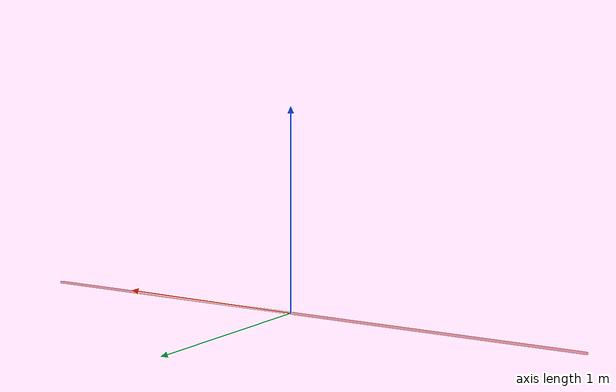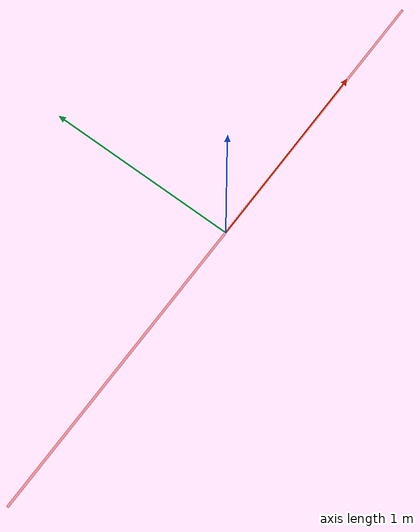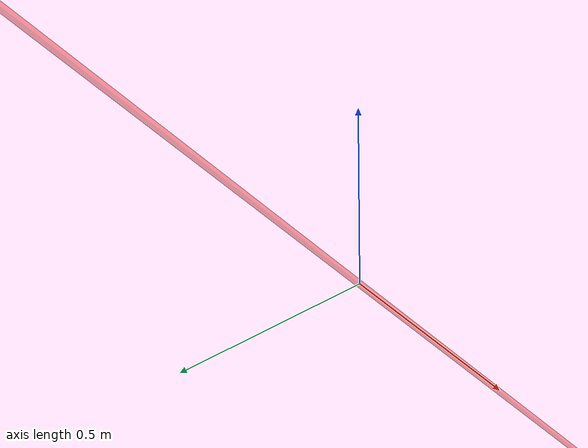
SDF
<sdf version="1.6">
    <model name="conveyor_belt">
        <static>true</static>
        <link name="conveyor_link">
            <visual name="conveyor_visual">
                <geometry>
                    <box>
                        <size>0.01 0.01 3</size>
                    </box>
                </geometry>
                <material>
                    <ambient>1 0 0 0.4</ambient>
                    <diffuse>1 0 0 0.4</diffuse>
                </material>
            </visual>
            <collision name="conveyor_collision">
                <geometry>
                    <box>
                        <size>0.01 0.01 3</size>
                    </box>
                </geometry>
            </collision>
            <inertial>
                <mass>10</mass>
                <inertia>
                    <ixx>1</ixx>
                    <iyy>1</iyy>
                    <izz>1</izz>
                    <ixy>0</ixy>
                    <ixz>0</ixz>
                    <iyz>0</iyz>
                </inertia>
            </inertial>
        </link>
        <pose>0 0 0 0 1.578 0</pose>
    </model>
</sdf>
